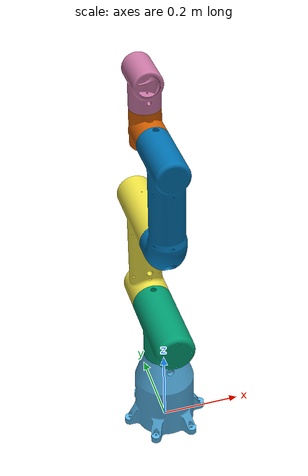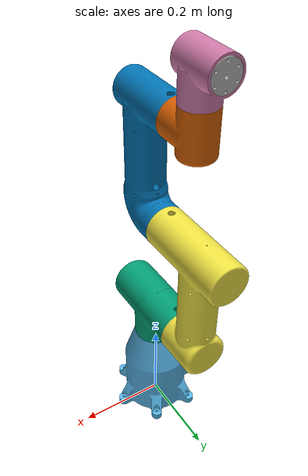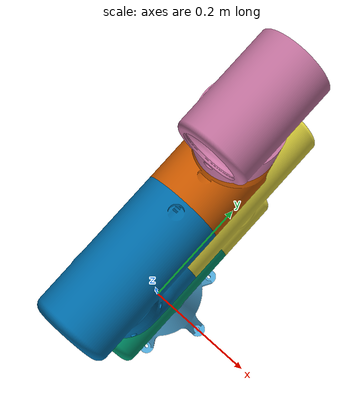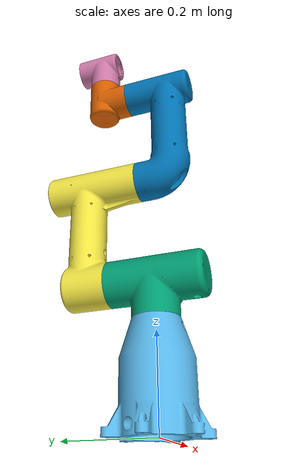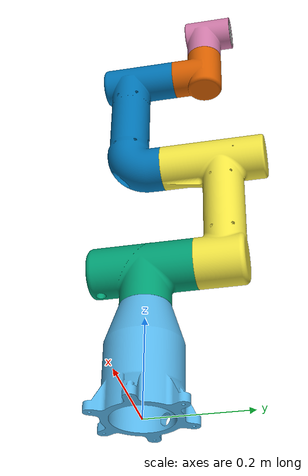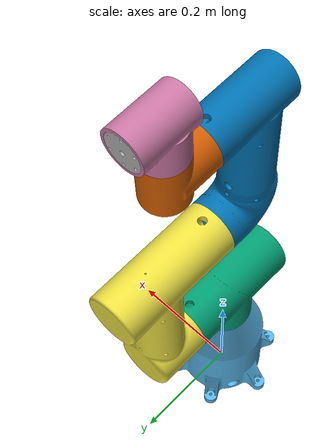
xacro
<?xml version="1.0" ?>
<robot name="panda" xmlns:xacro="http://www.ros.org/wiki/xacro">

  <!-- World Frame -->
  <link name="world"/>

  <!-- Link 0 - Base -->
  <link name="base_link">
    <visual>
      <geometry>
        <mesh filename="package://arm_description/meshes/base_link.stl" scale="0.001 0.001 0.001"/>
      </geometry>
    </visual>
    <collision>
      <geometry>
        <mesh filename="package://arm_description/meshes/base_link.stl" scale="0.001 0.001 0.001"/>
      </geometry>
    </collision>
      <inertial>
          <origin xyz="0 0 0" rpy="0.0 0.0 0.0"/>
          <mass value="0.1"/>
          <inertia ixx="0.1" ixy="0.0" ixz="0.0" iyy="0.1" iyz="0.0" izz="0.1"/>
      </inertial>
  </link>

  <!-- World-Base Joint -->
  <joint name="virtual_joint" type="fixed">
    <parent link="world"/>
    <child link="base_link"/>
    <origin xyz="0 0 0" rpy="0 0 0"/>
  </joint>

  <!-- Link 1 -->
  <link name="base_plate">
    <visual>
      <geometry>
        <mesh filename="package://arm_description/meshes/base_plate.stl" scale="0.001 0.001 0.001"/>
      </geometry>
    </visual>
    <collision>
      <geometry>
        <mesh filename="package://arm_description/meshes/base_plate.stl" scale="0.001 0.001 0.001"/>
      </geometry>
    </collision>
        <inertial>
            <origin xyz="0 0 0" rpy="0.0 0.0 0.0"/>
            <mass value="0.1"/>
            <inertia ixx="0.1" ixy="0.0" ixz="0.0" iyy="0.1" iyz="0.0" izz="0.1"/>
        </inertial>
  </link>

  <!-- Joint 1 -->
  <joint name="arm_joint1" type="revolute">
    <safety_controller k_position="100.0" k_velocity="40.0" soft_lower_limit="-2.8973" soft_upper_limit="2.8973"/>
    <origin rpy="0 0 0" xyz="0 0 0"/>
    <parent link="base_link"/>
    <child link="base_plate"/>
    <axis xyz="0 0 1"/>
    <limit effort="30.0" lower="-2.9671" upper="2.9671" velocity="10.0"/>
  </joint>

  <!-- Link 2 -->
  <link name="lower_arm">
    <visual>
      <origin xyz="0 0 -0.307026" rpy="0.0 0.0 0.0"/>
      <geometry>
        <mesh filename="package://arm_description/meshes/lower_arm.stl" scale="0.001 0.001 0.001"/>
      </geometry>
    </visual>
    <collision>
      <geometry>
        <mesh filename="package://arm_description/meshes/lower_arm.stl" scale="0.001 0.001 0.001"/>
      </geometry>
    </collision>
        <inertial>
          <origin xyz="0 0 0" rpy="0.0 0.0 0.0"/>
          <mass value="0.1"/>
          <inertia ixx="0.1" ixy="0.0" ixz="0.0" iyy="0.1" iyz="0.0" izz="0.1"/>
      </inertial>
  </link>

  <!-- Joint 2 -->
  <joint name="arm_joint2" type="revolute">
    <safety_controller k_position="100.0" k_velocity="40.0" soft_lower_limit="-1.7628" soft_upper_limit="1.7628"/>
    <origin rpy="0 0 0" xyz="0 0 0.307026"/>
    <parent link="base_plate"/>
    <child link="lower_arm"/>
    <axis xyz="0 1 0"/>
    <limit effort="30.0" lower="-1.8326" upper="1.8326" velocity="10.0"/>
  </joint>

  <!-- Link 3 -->
  <link name="upper_arm">
    <visual>
      <origin xyz="0 0 -0.550278" rpy="0.0 0.0 0.0"/>
      <geometry>
        <mesh filename="package://arm_description/meshes/upper_arm.stl" scale="0.001 0.001 0.001"/>
      </geometry>
    </visual>
    <collision>
      <geometry>
        <mesh filename="package://arm_description/meshes/upper_arm.stl" scale="0.001 0.001 0.001"/>
      </geometry>
    </collision>
      <inertial>
          <origin xyz="0 0 0" rpy="0.0 0.0 0.0"/>
          <mass value="0.1"/>
          <inertia ixx="0.1" ixy="0.0" ixz="0.0" iyy="0.1" iyz="0.0" izz="0.1"/>
      </inertial>
  </link>

  <!-- Joint 3 -->
  <joint name="arm_joint3" type="revolute">
    <safety_controller k_position="100.0" k_velocity="40.0" soft_lower_limit="-2.8973" soft_upper_limit="2.8973"/>
    <origin rpy="0 0 0" xyz="0 0 0.243252"/>
    <parent link="lower_arm"/>
    <child link="upper_arm"/>
    <axis xyz="0 1 0"/>
    <limit effort="30.0" lower="-2.9671" upper="2.9671" velocity="10.0"/>
  </joint>

  <!-- Link 4 -->
  <link name="wrist_1">
    <visual>
      <origin xyz="0 0 -0.800024" rpy="0.0 0.0 0.0"/>
      <geometry>
        <mesh filename="package://arm_description/meshes/wrist_1.stl" scale="0.001 0.001 0.001"/>
      </geometry>
    </visual>
    <collision>
      <geometry>
        <mesh filename="package://arm_description/meshes/wrist_1.stl" scale="0.001 0.001 0.001"/>
      </geometry>
    </collision>
      <inertial>
          <origin xyz="0 0 0" rpy="0.0 0.0 0.0"/>
          <mass value="0.1"/>
          <inertia ixx="0.1" ixy="0.0" ixz="0.0" iyy="0.1" iyz="0.0" izz="0.1"/>
      </inertial>
  </link>

  <!-- Joint 4 -->
  <joint name="arm_joint4" type="revolute">
    <safety_controller k_position="100.0" k_velocity="40.0" soft_lower_limit="-2.8973" soft_upper_limit="2.8973"/>
    <origin rpy="0 0 0" xyz="0 0 0.249746"/>
    <parent link="upper_arm"/>
    <child link="wrist_1"/>
    <axis xyz="0 1 0"/>
    <limit effort="30.0" lower="-2.9671" upper="2.9671" velocity="10.0"/>
  </joint>

  <!-- Link 5 -->
  <link name="wrist_2">
    <visual>
      <origin xyz="0 -0.122627 -0.800024" rpy="0.0 0.0 0.0"/>
      <geometry>
        <mesh filename="package://arm_description/meshes/wrist_2.stl" scale="0.001 0.001 0.001"/>
      </geometry>
    </visual>
    <collision>
      <geometry>
        <mesh filename="package://arm_description/meshes/wrist_2.stl" scale="0.001 0.001 0.001"/>
      </geometry>
    </collision>
      <inertial>
          <origin xyz="0 0 0" rpy="0.0 0.0 0.0"/>
          <mass value="0.1"/>
          <inertia ixx="0.1" ixy="0.0" ixz="0.0" iyy="0.1" iyz="0.0" izz="0.1"/>
      </inertial>
  </link>

  <!-- Joint 5 -->
  <joint name="arm_joint5" type="revolute">
    <safety_controller k_position="100.0" k_velocity="40.0" soft_lower_limit="-2.8973" soft_upper_limit="2.8973"/>
    <origin rpy="0 0 0" xyz="0 0.122627 0"/>
    <parent link="wrist_1"/>
    <child link="wrist_2"/>
    <axis xyz="0 0 1"/>
    <limit effort="30.0" lower="-2.9671" upper="2.9671" velocity="10.0"/>
  </joint>

  <!-- Link 6 -->
  <link name="wrist_3">
    <visual>
      <origin xyz="0 -0.122627 -0.854858" rpy="0.0 0.0 0.0"/>
      <geometry>
        <mesh filename="package://arm_description/meshes/wrist_3.stl" scale="0.001 0.001 0.001"/>
      </geometry>
    </visual>
    <collision>
      <geometry>
        <mesh filename="package://arm_description/meshes//wrist_3.stl" scale="0.001 0.001 0.001"/>
      </geometry>
    </collision>
      <inertial>
          <origin xyz="0 0 0" rpy="0.0 0.0 0.0"/>
          <mass value="0.1"/>
          <inertia ixx="0.1" ixy="0.0" ixz="0.0" iyy="0.1" iyz="0.0" izz="0.1"/>
      </inertial>
  </link>

  <!-- Joint 6 -->
  <joint name="arm_joint6" type="revolute">
    <safety_controller k_position="100.0" k_velocity="40.0" soft_lower_limit="-2.8973" soft_upper_limit="2.8973"/>
    <origin rpy="0 0 0" xyz="0 0 0.123876"/>
    <parent link="wrist_2"/>
    <child link="wrist_3"/>
    <axis xyz="0 1 0"/>
    <limit effort="30.0" lower="-2.9671" upper="2.9671" velocity="10.0"/>
  </joint>

</robot>
